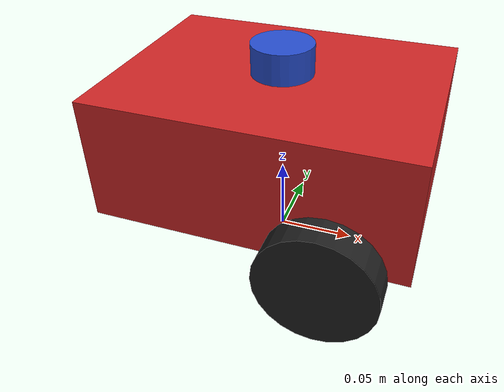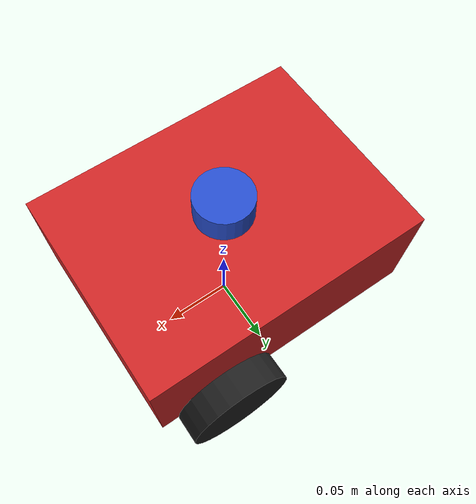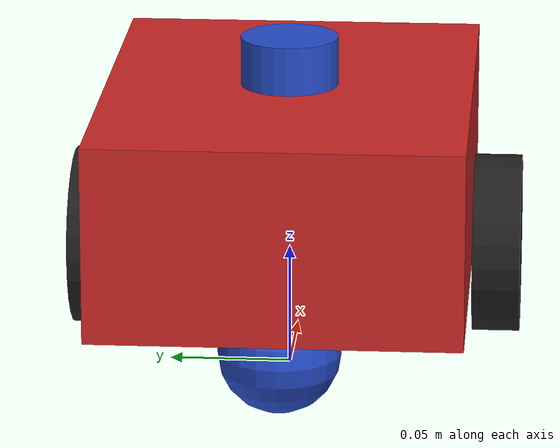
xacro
<?xml version="1.0"?>
<robot xmlns:xacro="http://www.ros.org/wiki/xacro"  name="GoPiGo3">

    <xacro:arg name="use_ros2_control" default="true"/>
    <xacro:arg name="sim_mode" default="true"/>

    <xacro:include filename="description.xacro" />
    <xacro:include filename="lidar.xacro" />
    <xacro:include filename="ros2_control.xacro" />

</robot>

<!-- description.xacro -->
<robot xmlns:xacro="http://www.ros.org/wiki/xacro" >

  <xacro:include filename="inertial_macros.xacro"/>

<!-- BASE LINK -->

  <link name="base_link">
    <visual>
      <geometry>
        <box size="0.2 0.15 0.08"/>
      </geometry>
      <origin rpy="0 0 0" xyz="0 0 0.08"/>
    </visual>

    <collision>
      <origin rpy="0 0 0" xyz="0 0 0.08"/>
      <geometry>
        <box size="0.2 0.15 0.08"/>
      </geometry>
    </collision>

    <xacro:inertial_box mass="0.5" x="0.2" y="0.15" z="0.08">
      <origin rpy="0 0 0" xyz="0 0 0.08"/>
    </xacro:inertial_box>
  </link>

<!-- LEFT WHEEL -->

  <joint name="left_wheel" type="continuous">
    <parent link="base_link"/>
    <child link="left_wheel_link"/>
    <origin xyz="0.05 0.085 0.0375" rpy="-1.57 0 0" />
    <axis xyz="0 0 1"/>
    <limit effort="50000" velocity="10"/>
    <dynamics damping="1.0" friction="1.0"/>
  </joint>

  <link name="left_wheel_link">
    <visual>
      <geometry>
        <cylinder length="0.02" radius="0.0375"/>
      </geometry>
      <origin rpy="0 0 0" xyz="0 0 0"/>
    </visual>

    <collision>
      <geometry>
        <cylinder length="0.02" radius="0.0375"/>
      </geometry>
      <origin rpy="0 0 0" xyz="0 0 0"/>
    </collision>

    <xacro:inertial_cylinder mass="0.05" length="0.02" radius="0.0375">
      <origin rpy="0 0 0" xyz="0 0 0"/>
    </xacro:inertial_cylinder>
  </link>

<!-- RIGHT WHEEL -->

  <joint name="right_wheel" type="continuous">
    <parent link="base_link"/>
    <child link="right_wheel_link"/>
    <origin xyz="0.05 -0.085 0.0375" rpy="1.57 0 0" />
    <axis xyz="0 0 -1"/>
    <limit effort="50000" velocity="10"/>
    <dynamics damping="1.0" friction="1.0"/>
  </joint>

  <link name="right_wheel_link">
    <visual>
      <geometry>
        <cylinder length="0.02" radius="0.0375"/>
      </geometry>
      <origin rpy="0 0 0" xyz="0 0 0"/>
    </visual>

    <collision>
      <geometry>
        <cylinder length="0.02" radius="0.0375"/>
      </geometry>
      <origin rpy="0 0 0" xyz="0 0 0"/>
    </collision>

    <xacro:inertial_cylinder mass="0.05" length="0.02" radius="0.0375">
      <origin rpy="0 0 0" xyz="0 0 0"/>
    </xacro:inertial_cylinder>
  </link>

<!-- CASTER WHEEL -->

  <joint name="caster_wheel_joint" type="fixed">
    <parent link="base_link"/>
    <child link="caster_wheel_link"/>
    <origin xyz="-0.06 0 0.025" rpy="0 0 0" />
    <axis xyz="0 0 0"/>
  </joint>

  <link name="caster_wheel_link">
    <visual>
      <geometry>
        <sphere radius="0.025"/>
      </geometry>
      <origin rpy="0 0 0" xyz="0 0 0"/>
    </visual>

    <collision>
      <geometry>
        <sphere radius="0.025"/>
      </geometry>
      <origin rpy="0 0 0" xyz="0 0 0"/>
    </collision>

    <xacro:inertial_sphere mass="0.02" radius="0.025">
      <origin rpy="0 0 0" xyz="0 0 0"/>
    </xacro:inertial_sphere>
  </link>

<!-- GAZEBO DESCRIPTIONS -->

<gazebo reference="base_link">
  <mu1>0.2</mu1>
  <mu2>0.2</mu2>
  <material>Gazebo/Red</material>
</gazebo>

<gazebo reference="left_wheel_link">
  <mu1>0.2</mu1>
  <mu2>0.2</mu2>
  <material>Gazebo/Black</material>
</gazebo>

<gazebo reference="right_wheel_link">
  <mu1>0.2</mu1>
  <mu2>0.2</mu2>
  <material>Gazebo/Black</material>
</gazebo>

<gazebo reference="caster_wheel_link">
  <mu1>0.000002</mu1>
  <mu2>0.000002</mu2>
  <material>Gazebo/Blue</material>
</gazebo>

</robot>

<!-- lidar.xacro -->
<robot xmlns:xacro="http://www.ros.org/wiki/xacro" >

    <joint name="laser_joint" type="fixed">
        <parent link="base_link"/>
        <child link="laser_frame"/>
        <origin xyz="0 0 0.13" rpy="0 0 0"/>
    </joint>

    <link name="laser_frame">
        <visual>
            <geometry>
                <cylinder radius="0.02" length="0.02"/>
            </geometry>
            <origin xyz="0 0 0"/>
        </visual>

        <collision>
            <geometry>
                <cylinder radius="0.02" length="0.02"/>
            </geometry>
            <origin xyz="0 0 0"/>
        </collision>

        <xacro:inertial_cylinder mass="0.05" length="0.02" radius="0.02">
            <origin xyz="0 0 0" rpy="0 0 0"/>
        </xacro:inertial_cylinder>

    </link>

    <gazebo reference="laser_frame">
        <material>Gazebo/Blue</material>

        <sensor name="laser" type="gpu_lidar">
            <pose> 0 0 0 0 0 0 </pose>
            <visualize>true</visualize>
            <update_rate>10</update_rate>
            <lidar>
                <scan>
                    <horizontal>
                        <samples>360</samples>
                        <min_angle>-3.14</min_angle>
                        <max_angle>3.14</max_angle>
                    </horizontal>
                </scan>
                <range>
                    <min>0.2</min>
                    <max>12</max>
                </range>
            <frame_id>laser_frame</frame_id>
            </lidar>
                <topic>scan</topic>
                <gz_frame_id>laser_frame</gz_frame_id>
        </sensor>
    </gazebo>

</robot>
